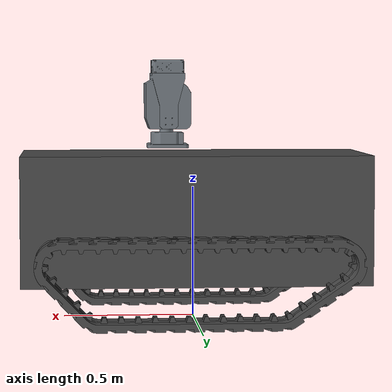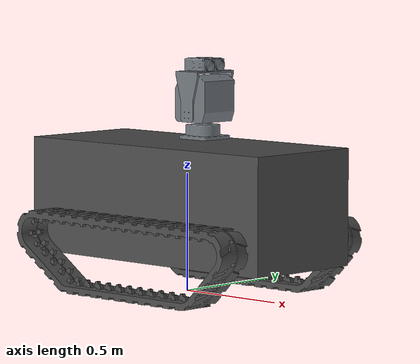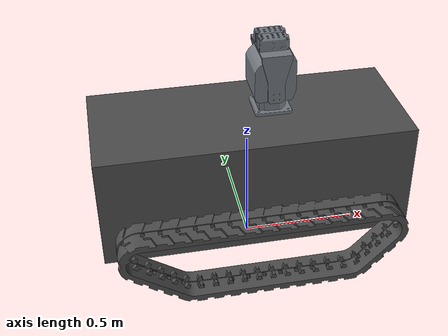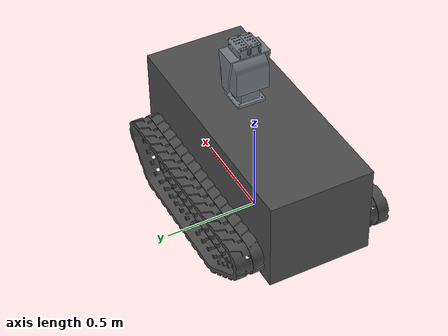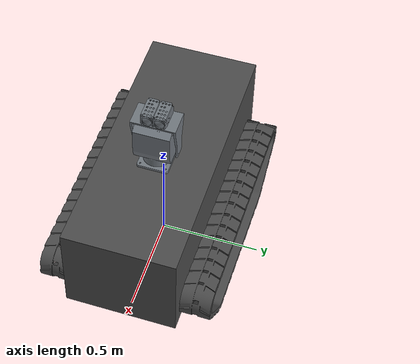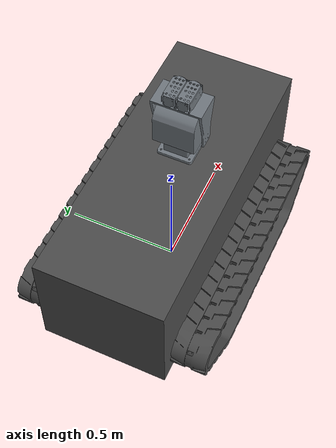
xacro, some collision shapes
<?xml version="1.0"?>
<robot xmlns:xacro="http://www.ros.org/wiki/xacro" name="tin3_bot">

  <xacro:include filename="$(find tin3_bot)/urdf/materials.xacro" />
  <xacro:include filename="$(find tin3_bot)/urdf/gazebo.xacro" />
  <xacro:include filename="$(find tin3_bot)/urdf/gazebo_control.xacro" />
  <xacro:include filename="$(find tin3_bot)/urdf/gimbal.xacro" />
  <xacro:include filename="$(find tin3_bot)/urdf/sensors.xacro" />

  <!-- PROPERTIES (meters)  -->

  <!-- Mesh scale: 0.001 to convert mm to meters -->
  <xacro:property name="mesh_scale" value="1 1 1" />

  <!-- Chassis dimensions (meters) -->
  <xacro:property name="chassis_length" value="0.837" />
  <xacro:property name="chassis_width" value="1.314" />
  <xacro:property name="chassis_height" value="0.606" />
  <xacro:property name="chassis_mass" value="20.0" />

  <!-- Track offsets from base_link center (meters) -->
  <xacro:property name="track_y_offset" value="0.35" />
  <xacro:property name="track_z_offset" value="-0.22" />

  <!-- Hidden wheel parameters -->
  <xacro:property name="wheel_radius" value="0.12" />
  <xacro:property name="wheel_width" value="0.10" />
  <xacro:property name="wheel_mass" value="1.0" />

  <!-- Wheel positions along track (X direction = front/back) -->
  <xacro:property name="wheel_front_x" value="0.40" />
  <xacro:property name="wheel_mid_x" value="0.0" />
  <xacro:property name="wheel_rear_x" value="-0.40" />

  <!-- Wheel Z position (below base_link origin) -->
  <xacro:property name="wheel_z" value="-0.27" />
  <!-- MACROS               -->

  <!-- Macro for inertia of a box -->
  <xacro:macro name="box_inertia" params="m x y z">
    <inertia ixx="${m*(y*y+z*z)/12}" ixy="0" ixz="0"
      iyy="${m*(x*x+z*z)/12}" iyz="0"
      izz="${m*(x*x+y*y)/12}" />
  </xacro:macro>

  <!-- Macro for inertia of a cylinder -->
  <xacro:macro name="cylinder_inertia" params="m r l">
    <inertia ixx="${m*(3*r*r+l*l)/12}" ixy="0" ixz="0"
      iyy="${m*(3*r*r+l*l)/12}" iyz="0"
      izz="${m*r*r/2}" />
  </xacro:macro>

  <!-- Macro for hidden wheel -->
  <xacro:macro name="hidden_wheel" params="name x_pos y_pos z_pos">
    <link name="${name}">
      <collision>
        <origin xyz="0 0 0" rpy="${pi/2} 0 0" />
        <geometry>
          <cylinder radius="${wheel_radius}" length="${wheel_width}" />
        </geometry>
      </collision>
      <inertial>
        <origin xyz="0 0 0" rpy="0 0 0" />
        <mass value="${wheel_mass}" />
        <xacro:cylinder_inertia m="${wheel_mass}" r="${wheel_radius}" l="${wheel_width}" />
      </inertial>
    </link>

    <joint name="${name}_joint" type="continuous">
      <parent link="base_link" />
      <child link="${name}" />
      <origin xyz="${x_pos} ${y_pos} ${z_pos}" rpy="0 0 0" />
      <axis xyz="0 1 0" />
    </joint>
  </xacro:macro>

  <!-- BASE FOOTPRINT       -->

  <link name="base_footprint" />

  <joint name="base_footprint_joint" type="fixed">
    <parent link="base_footprint" />
    <child link="base_link" />
    <origin xyz="0 0 0.387" rpy="0 0 0" />
  </joint>

  <!-- BASE LINK (CHASSIS)  -->

  <link name="base_link">
    <visual>
      <origin xyz="0 0 0" rpy="0 0 ${pi/2}" />
      <geometry>
        <mesh filename="package://tin3_bot/meshes/chassis.dae" scale="${mesh_scale}" />
      </geometry>
      <material name="dark_gray" />
    </visual>
    <collision>
      <origin xyz="0 0 0" rpy="0 0 0" />
      <geometry>
         <box size="1.32 0.55 0.49" />
      </geometry>
    </collision>
    <inertial>
      <origin xyz="0 0 0" rpy="0 0 0" />
      <mass value="${chassis_mass}" />
      <xacro:box_inertia m="${chassis_mass}" x="${chassis_length}" y="${chassis_width}"
        z="${chassis_height}" />
    </inertial>
  </link>

  <!-- Gimbal Joint        -->
  <joint name="gimbal_base_joint" type="fixed">
    <parent link="base_link" />
    <child link="gimbal_base_link" />
    <origin xyz="0.1  0  0.303" rpy="0 0 0" />
  </joint>

  <!-- TRACK VISUALS        -->

  <!-- Left Track Visual -->
  <link name="left_track_visual">
    <visual>
      <origin xyz="0 0 0" rpy="0 0 ${-pi/2}" />
      <geometry>
        <mesh filename="package://tin3_bot/meshes/left_track.dae" scale="${mesh_scale}" />
      </geometry>
      <material name="dark_gray" />
    </visual>
    <collision>
      <origin xyz="0 0 0" rpy="0 0 0" />
      <geometry>
          <box size="1.22 0.154 0.33" />
      </geometry>
    </collision>
    <inertial>
      <mass value="0.01" />
      <inertia ixx="0.0001" ixy="0" ixz="0" iyy="0.0001" iyz="0" izz="0.0001" />
    </inertial>
  </link>

  <joint name="left_track_visual_joint" type="fixed">
    <parent link="base_link" />
    <child link="left_track_visual" />
    <origin xyz="0 ${track_y_offset} ${track_z_offset}" rpy="0 0 0" />
  </joint>

  <!-- Right Track Visual -->
  <link name="right_track_visual">
    <visual>
      <origin xyz="0 0 0" rpy="0 0 ${-pi/2}" />
      <geometry>
        <mesh filename="package://tin3_bot/meshes/right_track.dae" scale="${mesh_scale}" />
      </geometry>
      <material name="dark_gray" />

    </visual>
    <collision>
      <origin xyz="0 0 0" rpy="0 0 0" />
      <geometry>
        <box size="1.22 0.154 0.33" />
      </geometry>
    </collision>
    <inertial>
      <mass value="0.01" />
      <inertia ixx="0.0001" ixy="0" ixz="0" iyy="0.0001" iyz="0" izz="0.0001" />
    </inertial>
  </link>

  <joint name="right_track_visual_joint" type="fixed">
    <parent link="base_link" />
    <child link="right_track_visual" />
    <origin xyz="0 ${-track_y_offset} ${track_z_offset}" rpy="0 0 0" />
  </joint>

  <!-- HIDDEN WHEELS        -->

  <!-- Left side wheels (3 wheels) -->
  <xacro:hidden_wheel name="left_front_wheel"
    x_pos="${wheel_front_x}"
    y_pos="${track_y_offset}"
    z_pos="${wheel_z}" />

  <xacro:hidden_wheel name="left_mid_wheel"
    x_pos="${wheel_mid_x}"
    y_pos="${track_y_offset}"
    z_pos="${wheel_z}" />

  <xacro:hidden_wheel name="left_rear_wheel"
    x_pos="${wheel_rear_x}"
    y_pos="${track_y_offset}"
    z_pos="${wheel_z}" />

  <!-- Right side wheels (3 wheels) -->
  <xacro:hidden_wheel name="right_front_wheel"
    x_pos="${wheel_front_x}"
    y_pos="${-track_y_offset}"
    z_pos="${wheel_z}" />

  <xacro:hidden_wheel name="right_mid_wheel"
    x_pos="${wheel_mid_x}"
    y_pos="${-track_y_offset}"
    z_pos="${wheel_z}" />

  <xacro:hidden_wheel name="right_rear_wheel"
    x_pos="${wheel_rear_x}"
    y_pos="${-track_y_offset}"
    z_pos="${wheel_z}" />

</robot>

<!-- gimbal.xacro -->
<robot xmlns:xacro="http://www.ros.org/wiki/xacro" name="gimbal">

  <!-- Properties -->
  <xacro:property name="pedestal_z" value="0.073" />
  <xacro:property name="pan_z" value="0.194" />
  <xacro:property name="tilt_z" value="0.211" />

  <!-- ============ GIMBAL BASE (Pedestal) ============ -->
  <link name="gimbal_base_link">
    <visual>
      <origin xyz="0 0 0" rpy="${pi} 0 0" />
      <geometry>
        <mesh filename="package://tin3_bot/meshes/gimbal_base.dae" />
      </geometry>
    </visual>
    <collision>
      <geometry>
        <box size="0.155 0.155 0.073" />
      </geometry>
    </collision>
    <inertial>
      <mass value="0.5" />
      <inertia ixx="0.001" ixy="0" ixz="0" iyy="0.001" iyz="0" izz="0.001" />
    </inertial>
  </link>

  <!-- ============ GIMBAL PAN (Big Box) ============ -->
  <link name="gimbal_pan_link">
    <visual>
      <origin xyz="0 0 0" rpy="${pi} 0 ${pi}" />
      <geometry>
        <mesh filename="package://tin3_bot/meshes/gimbal_pan.dae" />
      </geometry>
    </visual>
    <collision>
      <geometry>
        <box size="0.15 0.15 0.15" />  <!-- Smaller -->
      </geometry>
    </collision>
    <inertial>
      <mass value="0.8" />
       <inertia ixx="0.003" ixy="0" ixz="0" iyy="0.003" iyz="0" izz="0.003" />
    </inertial>
  </link>

  <joint name="gimbal_pan_joint" type="revolute">
    <parent link="gimbal_base_link" />
    <child link="gimbal_pan_link" />
    <origin xyz="0 0 ${pedestal_z/2 + pan_z/2}" rpy="0 0 0" />
    <axis xyz="0 0 1" />
    <limit lower="${-pi}" upper="${pi}" effort="10" velocity="1.0" />
    <dynamics damping="0.5" friction="0.1" />
  </joint>

  <!-- ============ GIMBAL TILT (Head) ============ -->
  <link name="gimbal_tilt_link">
    <visual>
      <origin xyz="0 0 0" rpy="${pi} 0 0" />
      <geometry>
        <mesh filename="package://tin3_bot/meshes/gimbal_tilt.dae" />
      </geometry>
    </visual>
    <collision>
      <geometry>
        <box size="0.10 0.18 0.15" />
      </geometry>
    </collision>
    <inertial>
      <mass value="0.5" />
      <inertia ixx="0.0023" ixy="0" ixz="0" iyy="0.0014" iyz="0" izz="0.0018" />
    </inertial>
  </link>

  <joint name="gimbal_tilt_joint" type="revolute">
    <parent link="gimbal_pan_link" />
    <child link="gimbal_tilt_link" />
    <origin xyz="0 0 0.01" rpy="0 0 0" />
    <axis xyz="0 1 0" />
    <limit lower="${-pi/4}" upper="${pi/4}" effort="10" velocity="1.0" />
    <dynamics damping="0.5" friction="0.1" />
  </joint>
  <!-- ============ RGB Camera Link ============ -->
  <link name="gimbal_camera_link">
    <visual>
      <origin xyz="0 0 0" rpy="0 -1.5708 3.1416" />
      <geometry>
        <mesh filename="package://tin3_bot/meshes/camera.dae" />
      </geometry>
    </visual>

    <collision>
      <origin xyz="0 0 0" rpy="0 0 0" />
      <geometry>
        <box size="0.055 0.064 0.123" />
      </geometry>
    </collision>
    <inertial>
      <origin xyz="0 0 0" rpy="0 0 0" />
      <mass value="0.05" />
      <inertia
        ixx="1e-4" ixy="0.0" ixz="0.0"
        iyy="1e-4" iyz="0.0"
        izz="1e-4" />
    </inertial>
  </link>
  <joint name="gimbal_camera_joint" type="fixed">
    <parent link="gimbal_tilt_link" />
    <child link="gimbal_camera_link" />
    <origin xyz="0 -0.03 ${tilt_z/2+0.025}" rpy="0 0 0" />
  </joint>
  <!-- ============ IR Camera Link ============ -->
  <link name="gimbal_ir_camera_link">
    <visual>
      <origin xyz="0 0 0" rpy="0 -1.5708 3.1416" />
      <geometry>
        <mesh filename="package://tin3_bot/meshes/camera.dae" />
      </geometry>
    </visual>
    <collision>
      <geometry>
        <box size="0.055 0.064 0.123" />
      </geometry>
    </collision>
    <inertial>
      <mass value="0.05" />
      <inertia ixx="0.0001" ixy="0" ixz="0" iyy="0.0001" iyz="0" izz="0.0001" />
    </inertial>
  </link>
  <joint name="gimbal_ir_camera_joint" type="fixed">
    <parent link="gimbal_tilt_link" />
    <child link="gimbal_ir_camera_link" />
    <origin xyz="0 0.03 ${tilt_z/2+0.025}" rpy="0 0 0" />
  </joint>
  <!-- RGB Camera Optical Frame -->
  <link name="gimbal_camera_optical_frame" />
  <joint name="gimbal_camera_optical_joint" type="fixed">
    <parent link="gimbal_camera_link" />
    <child link="gimbal_camera_optical_frame" />
    <origin xyz="0 0 0" rpy="${-pi/2} 0 ${-pi/2}" />
  </joint>

  <!-- IR Camera Optical Frame -->
  <link name="gimbal_ir_camera_optical_frame" />
  <joint name="gimbal_ir_camera_optical_joint" type="fixed">
    <parent link="gimbal_ir_camera_link" />
    <child link="gimbal_ir_camera_optical_frame" />
    <origin xyz="0 0 0" rpy="${-pi/2} 0 ${-pi/2}" />
  </joint>
</robot>

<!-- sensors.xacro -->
<robot xmlns:xacro="http://www.ros.org/wiki/xacro" name="tin3_bot">

    <!-- Add namespace properties at top of sensors.xacro -->
    <xacro:arg name="robot_ns" default="" />
    <xacro:property name="ns" value="$(arg robot_ns)" />
    <xacro:property name="topic_prefix" value="${'/' + ns if ns != '' else ''}" />
    <xacro:property name="frame_prefix" value="${ns + '/' if ns != '' else ''}" />
    <!-- GPS SENSOR           -->
    <xacro:property name="gps_xyz" value="-0.4 0 0.35" />
    <xacro:property name="gps_rpy" value="0 0 0" />

    <link name="gps_link">
        <inertial>
            <origin xyz="0 0 0" rpy="0 0 0" />
            <mass value="0.1" />
            <inertia ixx="0.0001" ixy="0" ixz="0" iyy="0.0001" iyz="0" izz="0.0001" />
        </inertial>
    </link>

    <joint name="gps_joint" type="fixed">
        <parent link="base_link" />
        <child link="gps_link" />
        <origin xyz="${gps_xyz}" rpy="${gps_rpy}" />
    </joint>
    <gazebo reference="gps_link">
        <sensor name="gps_sensor" type="navsat">
            <always_on>true</always_on>
            <update_rate>5</update_rate>
            <topic>${topic_prefix}/gps/fix</topic>
            <gz_frame_id>${frame_prefix}gps_link</gz_frame_id>
            <navsat>
                <position_sensing>
                    <horizontal>
                        <noise type="gaussian">
                            <mean>0.0</mean>
                            <stddev>0.00001</stddev> <!-- ~1 meter in degrees -->
                        </noise>
                    </horizontal>
                    <vertical>
                        <noise type="gaussian">
                            <mean>0.0</mean>
                            <stddev>2.0</stddev> <!-- 2m altitude - this is OK -->
                        </noise>
                    </vertical>
                </position_sensing>
            </navsat>
        </sensor>
    </gazebo>
    <!-- IMU SENSOR           -->
    <xacro:property name="imu_xyz" value="0 0 0.05" />
    <link name="imu_link">
        <inertial>
            <mass value="0.01" />
            <inertia ixx="0.0001" ixy="0" ixz="0" iyy="0.0001" iyz="0" izz="0.0001" />
        </inertial>
    </link>
    <joint name="imu_joint" type="fixed">
        <parent link="base_link" />
        <child link="imu_link" />
        <origin xyz="${imu_xyz}" rpy="0 0 0" />
    </joint>
    <!-- IMU Gazebo Plugin (Harmonic) -->
    <gazebo reference="imu_link">
        <sensor name="imu_sensor" type="imu">
            <always_on>true</always_on>
            <update_rate>100</update_rate>
            <topic>${topic_prefix}/imu/data</topic>
            <gz_frame_id>${frame_prefix}imu_link</gz_frame_id>
            <imu>
                <angular_velocity>
                    <x>
                        <noise type="gaussian">
                            <mean>0.0</mean>
                            <stddev>0.0002</stddev>
                        </noise>
                    </x>
                    <y>
                        <noise type="gaussian">
                            <mean>0.0</mean>
                            <stddev>0.0002</stddev>
                        </noise>
                    </y>
                    <z>
                        <noise type="gaussian">
                            <mean>0.0</mean>
                            <stddev>0.0002</stddev>
                        </noise>
                    </z>
                </angular_velocity>
                <linear_acceleration>
                    <x>
                        <noise type="gaussian">
                            <mean>0.0</mean>
                            <stddev>0.017</stddev>
                        </noise>
                    </x>
                    <y>
                        <noise type="gaussian">
                            <mean>0.0</mean>
                            <stddev>0.017</stddev>
                        </noise>
                    </y>
                    <z>
                        <noise type="gaussian">
                            <mean>0.0</mean>
                            <stddev>0.017</stddev>
                        </noise>
                    </z>
                </linear_acceleration>
            </imu>
        </sensor>
    </gazebo>
    <!-- LiDAR SENSOR           -->
    <xacro:property name="lidar_xyz" value="0.626 -0.01 -0.06" />
    <xacro:property name="mesh_scale" value="1 1 1" />
    <link name="lidar_link">
        <visual>
            <origin xyz="0 0 0" rpy="${pi/2} 0 ${-pi/2}" />
            <geometry>
                <mesh filename="package://tin3_bot/meshes/lidar.dae" scale="${mesh_scale}" />
            </geometry>
            <material name="dark_gray" />
        </visual>
        <collision>
            <geometry>
                <cylinder radius="0.045" length="0.03" />
            </geometry>
        </collision>
        <inertial>
            <mass value="0.5" />
            <inertia ixx="0.001" ixy="0" ixz="0" iyy="0.001" iyz="0" izz="0.001" />
        </inertial>
    </link>
    <joint name="lidar_joint" type="fixed">
        <parent link="base_link" />
        <child link="lidar_link" />
        <origin xyz="${lidar_xyz}" rpy="0 0 0" />
    </joint>
    <gazebo reference="lidar_link">
        <sensor name="lidar_sensor" type="gpu_lidar">
            <always_on>true</always_on>
            <update_rate>10</update_rate>
            <topic>${topic_prefix}/scan</topic>
            <gz_frame_id>${frame_prefix}lidar_link</gz_frame_id>
            <lidar>
                <scan>
                    <horizontal>
                        <!-- FOV: 120° / 0.625° = 192 samples -->
                        <samples>192</samples>
                        <resolution>1</resolution>
                        <min_angle>-1.0472</min_angle>
                        <max_angle>1.0472</max_angle>
                    </horizontal>
                    <vertical>
                        <!-- FOV: 90° with 144 lines (per spec) -->
                        <samples>144</samples>
                        <resolution>1</resolution>
                        <min_angle>-0.7854</min_angle>
                        <max_angle>0.7854</max_angle>
                    </vertical>
                </scan>
                <range>
                    <min>0.1</min>
                    <max>30.0</max>      <!-- 30m @ 10% reflectivity -->
                    <resolution>0.01</resolution>
                </range>
                <noise>
                    <type>gaussian</type>
                    <mean>0.0</mean>
                    <stddev>0.05</stddev>  <!-- ±5cm accuracy -->
                </noise>
            </lidar>
            <visualize>true</visualize>
        </sensor>
    </gazebo>
    <!-- RGB CAMERA SENSOR    -->
    <gazebo reference="gimbal_camera_link">
        <sensor name="rgb_camera" type="camera">
            <always_on>true</always_on>
            <update_rate>30</update_rate>
            <topic>${topic_prefix}/camera/image_raw</topic>
            <gz_frame_id>${frame_prefix}gimbal_camera_link</gz_frame_id>
            <camera>
                <horizontal_fov>1.047</horizontal_fov>
                <image>
                    <width>640</width>
                    <height>480</height>
                    <format>R8G8B8</format>
                </image>
                <clip>
                    <near>0.1</near>
                    <far>100</far>
                </clip>
                <noise>
                    <type>gaussian</type>
                    <mean>0.0</mean>
                    <stddev>0.007</stddev>
                </noise>
            </camera>
        </sensor>
    </gazebo>
    <!-- IR CAMERA SENSOR     -->
    <gazebo reference="gimbal_ir_camera_link">
        <sensor name="ir_camera" type="camera">
            <always_on>true</always_on>
            <update_rate>30</update_rate>
            <topic>${topic_prefix}/ir/image_raw</topic>
            <gz_frame_id>${frame_prefix}gimbal_ir_camera_link</gz_frame_id>
            <camera>
                <horizontal_fov>1.047</horizontal_fov>
                <image>
                    <width>640</width>
                    <height>480</height>
                    <format>L8</format>
                </image>
                <clip>
                    <near>0.1</near>
                    <far>100</far>
                </clip>
            </camera>
        </sensor>
    </gazebo>
</robot>
